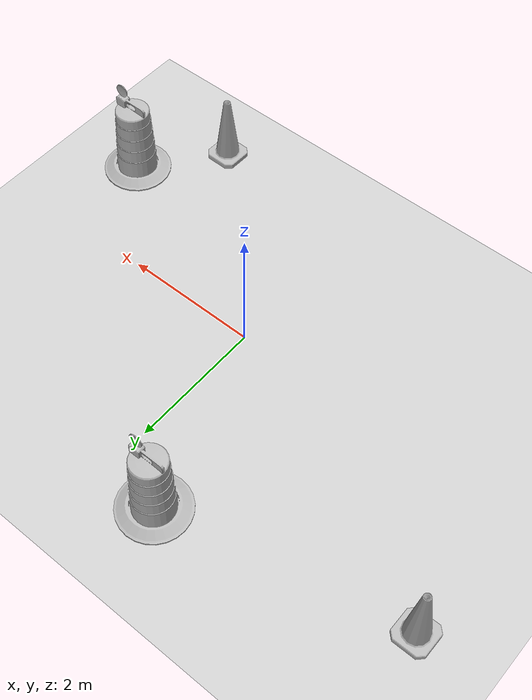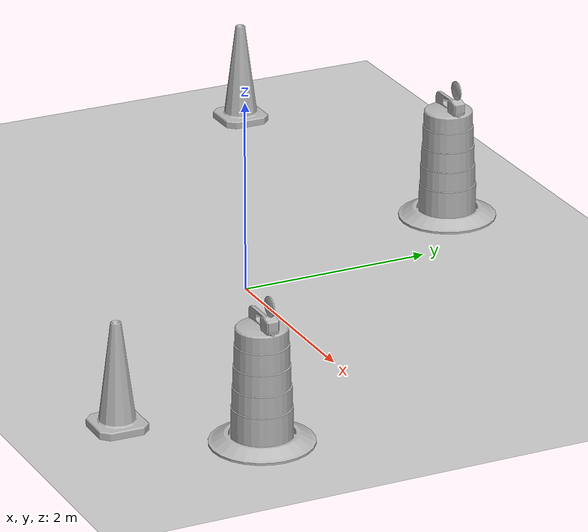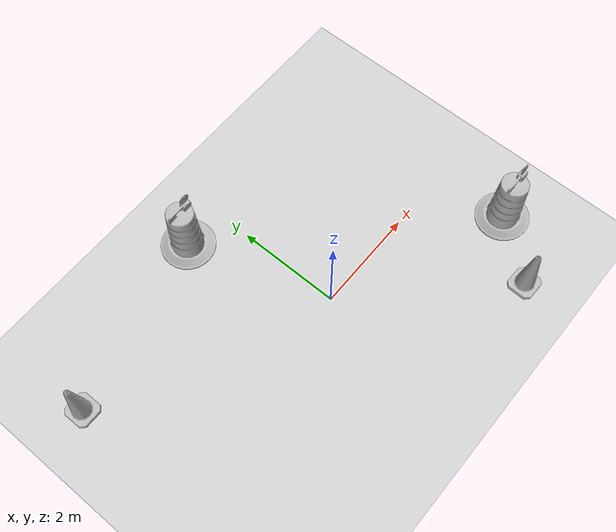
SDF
<sdf version="1.7">
 <world name="default">
  <light name="sun" type="directional">
   <pose>0 0 10 0 -0 0</pose>
   <diffuse>0.8 0.8 0.8 1</diffuse>
   <specular>0.2 0.2 0.2 1</specular>
   <attenuation>
    <range>1000</range>
    <constant>0.9</constant>
    <linear>0.01</linear>
    <quadratic>0.001</quadratic>
   </attenuation>
   <direction>-0.5 0.1 -0.9</direction>
   <spot><inner_angle>0</inner_angle><outer_angle>0</outer_angle><falloff>0</falloff></spot>
  </light>
  <model name="ground_plane">
   <static>1</static>
   <link name="link">
    <collision name="collision">
     <geometry><plane><normal>0 0 1</normal><size>100 100</size></plane></geometry>
     <surface>
      <contact><collide_bitmask>65535</collide_bitmask></contact>
      <friction><ode><mu>100</mu><mu2>50</mu2></ode></friction>
     </surface>
    </collision>
    <visual name="visual">
     <cast_shadows>0</cast_shadows>
     <geometry><plane><normal>0 0 1</normal><size>100 100</size></plane></geometry>
     <material>
      <script><uri>file://media/materials/scripts/gazebo.material</uri><name>Gazebo/Grey</name></script>
     </material>
    </visual>
   </link>
  </model>
  <gravity>0 0 -9.8</gravity>
  <magnetic_field>6e-06 2.3e-05 -4.2e-05</magnetic_field>
  <atmosphere type="adiabatic"/>
  <physics type="ode">
   <max_step_size>0.001</max_step_size>
   <real_time_factor>1</real_time_factor>
   <real_time_update_rate>1000</real_time_update_rate>
  </physics>
  <scene><ambient>0.4 0.4 0.4 1</ambient><background>0.7 0.7 0.7 1</background><shadows>1</shadows></scene>
  <audio><device>default</device></audio>
  <spherical_coordinates>
   <surface_model>EARTH_WGS84</surface_model>
   <latitude_deg>0</latitude_deg>
   <longitude_deg>0</longitude_deg>
   <elevation>0</elevation>
   <heading_deg>0</heading_deg>
  </spherical_coordinates>
  <model name="Construction Barrel">
   <link name="link">
    <inertial>
     <pose>0 0 0.4 0 -0 0</pose>
     <mass>500</mass>
     <inertia><ixx>51.2096</ixx><iyy>51.2096</iyy><izz>25</izz><ixy>0</ixy><ixz>0</ixz><iyz>0</iyz></inertia>
    </inertial>
    <collision name="collision">
     <geometry><mesh><uri>model://construction_barrel/meshes/construction_barrel.dae</uri></mesh></geometry>
    </collision>
    <visual name="visual">
     <geometry><mesh><uri>model://construction_barrel/meshes/construction_barrel.dae</uri></mesh></geometry>
    </visual>
   </link>
   <pose>-0.820711 2.7035 -0 0 0 -2.5e-05</pose>
  </model>
  <model name="Construction Cone">
   <link name="link">
    <collision name="collision">
     <geometry>
      <mesh><scale>10 10 10</scale><uri>model://construction_cone/meshes/construction_cone.dae</uri></mesh>
     </geometry>
    </collision>
    <visual name="visual">
     <geometry>
      <mesh><scale>10 10 10</scale><uri>model://construction_cone/meshes/construction_cone.dae</uri></mesh>
     </geometry>
    </visual>
    <inertial>
     <inertia><ixx>1</ixx><ixy>0</ixy><ixz>0</ixz><iyy>1</iyy><iyz>0</iyz><izz>1</izz></inertia>
     <mass>1</mass>
    </inertial>
   </link>
   <pose>-4.24811 1.94031 -0 0 -0 0.003356</pose>
  </model>
  <model name="Construction Barrel_clone">
   <link name="link">
    <inertial>
     <pose>0 0 0.4 0 -0 0</pose>
     <mass>500</mass>
     <inertia><ixx>51.2096</ixx><iyy>51.2096</iyy><izz>25</izz><ixy>0</ixy><ixz>0</ixz><iyz>0</iyz></inertia>
    </inertial>
    <collision name="collision">
     <geometry><mesh><uri>model://construction_barrel/meshes/construction_barrel.dae</uri></mesh></geometry>
    </collision>
    <visual name="visual">
     <geometry><mesh><uri>model://construction_barrel/meshes/construction_barrel.dae</uri></mesh></geometry>
    </visual>
   </link>
   <pose>3.32783 -1.40349 -0 0 0 -2.4e-05</pose>
  </model>
  <model name="Construction Cone_clone">
   <link name="link">
    <collision name="collision">
     <geometry>
      <mesh><scale>10 10 10</scale><uri>model://construction_cone/meshes/construction_cone.dae</uri></mesh>
     </geometry>
    </collision>
    <visual name="visual">
     <geometry>
      <mesh><scale>10 10 10</scale><uri>model://construction_cone/meshes/construction_cone.dae</uri></mesh>
     </geometry>
    </visual>
    <inertial>
     <inertia><ixx>1</ixx><ixy>0</ixy><ixz>0</ixz><iyy>1</iyy><iyz>0</iyz><izz>1</izz></inertia>
     <mass>1</mass>
    </inertial>
   </link>
   <pose>2.4436 -2.49153 -1e-05 0 0 -0.019269</pose>
  </model>
 </world>
</sdf>
